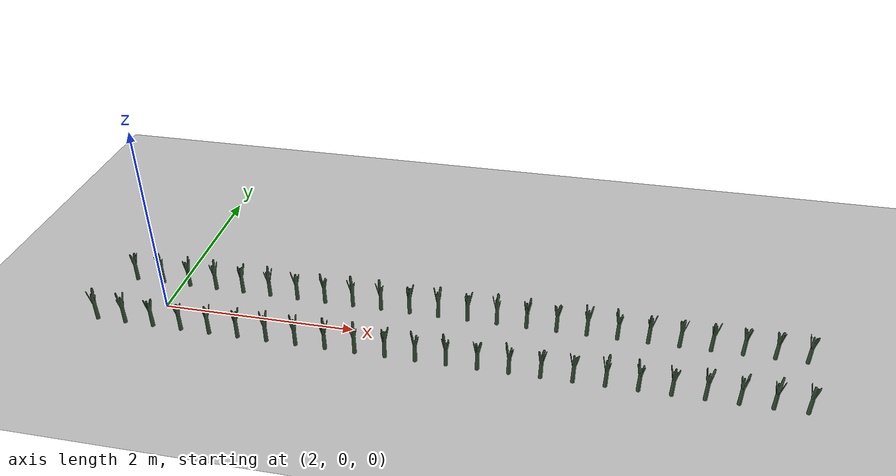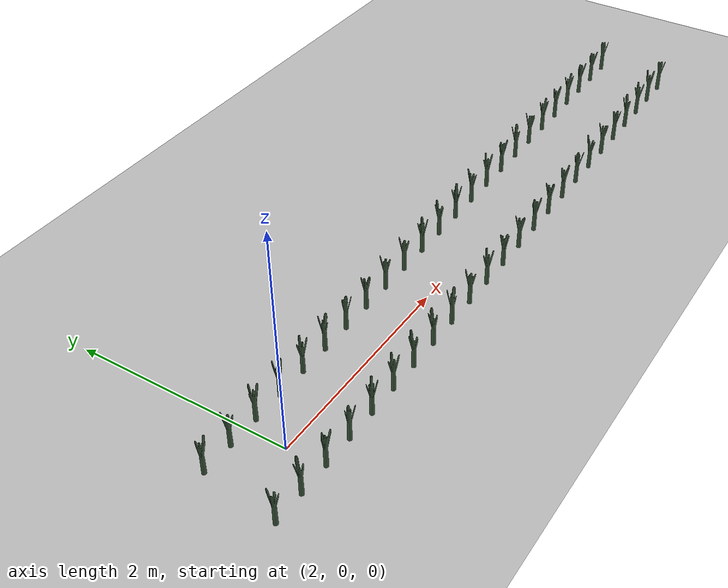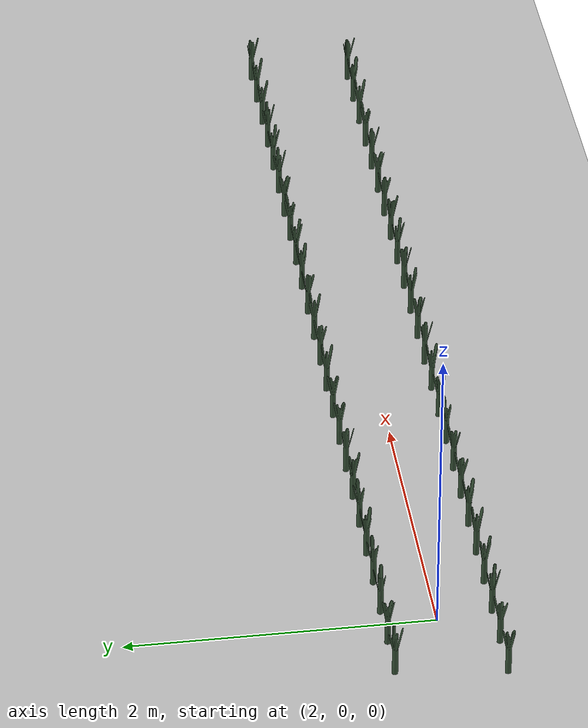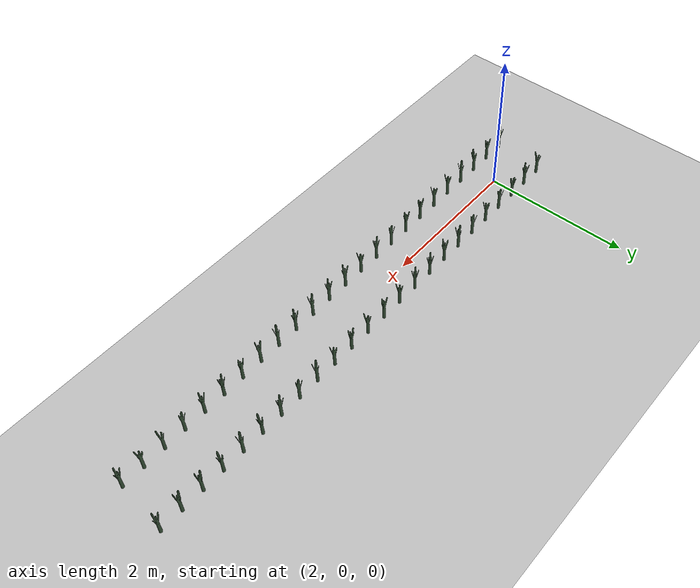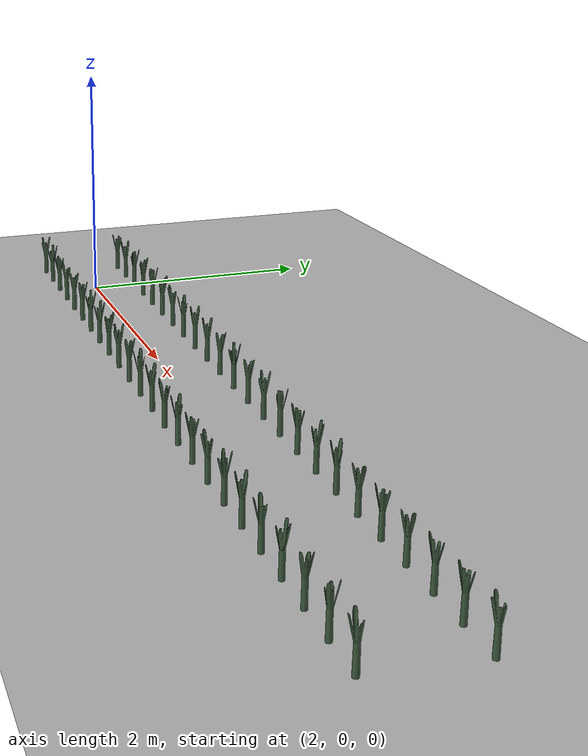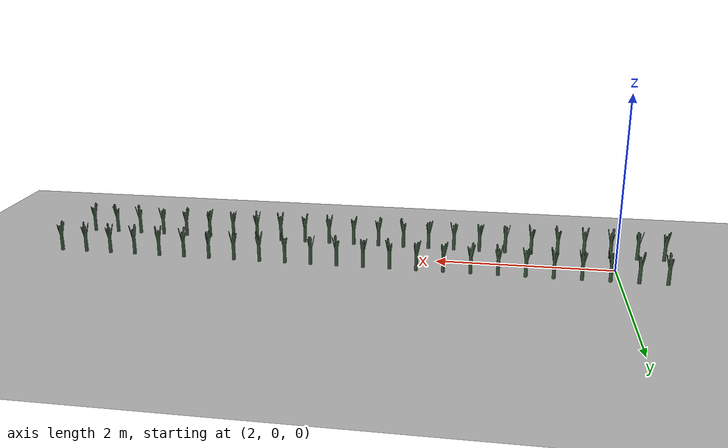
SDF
<sdf version="1.6">
 <world name="default">
  <light name="sun" type="directional">
   <pose>0 0 10 0 -0 0</pose>
   <diffuse>0.5 0.5 0.5 1</diffuse>
   <specular>0.1 0.1 0.1 1</specular>
   <attenuation>
    <range>1000</range>
    <constant>0.9</constant>
    <linear>0.01</linear>
    <quadratic>0.001</quadratic>
   </attenuation>
   <direction>0.9 0.5 -1</direction>
  </light>
  <scene><background>130 200 255 1</background><ambient>130 140 140 1</ambient></scene>
  <include><uri>model://dirt_plane</uri></include>
  <include><uri>model://Leek</uri><pose>1.500000 0.350000 0.15 0 0 111.521978</pose><static>0</static></include>
  <include><uri>model://Leek</uri><pose>1.800000 0.350000 0.15 0 0 -92.050292</pose><static>0</static></include>
  <include>
   <uri>model://Leek</uri>
   <pose>2.100000 0.350000 0.15 0 0 -132.104680</pose>
   <static>0</static>
  </include>
  <include><uri>model://Leek</uri><pose>2.400000 0.350000 0.15 0 0 -81.534411</pose><static>0</static></include>
  <include><uri>model://Leek</uri><pose>2.700000 0.350000 0.15 0 0 -0.655057</pose><static>0</static></include>
  <include><uri>model://Leek</uri><pose>3.000000 0.350000 0.15 0 0 -12.314395</pose><static>0</static></include>
  <include>
   <uri>model://Leek</uri>
   <pose>3.300000 0.350000 0.15 0 0 -141.010897</pose>
   <static>0</static>
  </include>
  <include><uri>model://Leek</uri><pose>3.600000 0.350000 0.15 0 0 27.825775</pose><static>0</static></include>
  <include><uri>model://Leek</uri><pose>3.900000 0.350000 0.15 0 0 -79.605213</pose><static>0</static></include>
  <include><uri>model://Leek</uri><pose>4.200000 0.350000 0.15 0 0 8.320222</pose><static>0</static></include>
  <include><uri>model://Leek</uri><pose>4.500000 0.350000 0.15 0 0 -63.840202</pose><static>0</static></include>
  <include><uri>model://Leek</uri><pose>4.800000 0.350000 0.15 0 0 139.426235</pose><static>0</static></include>
  <include><uri>model://Leek</uri><pose>5.100000 0.350000 0.15 0 0 -57.678516</pose><static>0</static></include>
  <include><uri>model://Leek</uri><pose>5.400000 0.350000 0.15 0 0 89.526456</pose><static>0</static></include>
  <include>
   <uri>model://Leek</uri>
   <pose>5.700000 0.350000 0.15 0 0 -151.466066</pose>
   <static>0</static>
  </include>
  <include>
   <uri>model://Leek</uri>
   <pose>6.000000 0.350000 0.15 0 0 -146.838806</pose>
   <static>0</static>
  </include>
  <include>
   <uri>model://Leek</uri>
   <pose>6.300000 0.350000 0.15 0 0 -112.548337</pose>
   <static>0</static>
  </include>
  <include><uri>model://Leek</uri><pose>6.600000 0.350000 0.15 0 0 8.531240</pose><static>0</static></include>
  <include>
   <uri>model://Leek</uri>
   <pose>6.900000 0.350000 0.15 0 0 -139.845747</pose>
   <static>0</static>
  </include>
  <include><uri>model://Leek</uri><pose>7.200000 0.350000 0.15 0 0 35.568974</pose><static>0</static></include>
  <include>
   <uri>model://Leek</uri>
   <pose>7.500000 0.350000 0.15 0 0 -152.418566</pose>
   <static>0</static>
  </include>
  <include><uri>model://Leek</uri><pose>7.800000 0.350000 0.15 0 0 179.601846</pose><static>0</static></include>
  <include><uri>model://Leek</uri><pose>8.100000 0.350000 0.15 0 0 123.109813</pose><static>0</static></include>
  <include><uri>model://Leek</uri><pose>8.400000 0.350000 0.15 0 0 72.264714</pose><static>0</static></include>
  <include>
   <uri>model://Leek</uri>
   <pose>1.414264 -0.350000 0.15 0 0 -48.354649</pose>
   <static>0</static>
  </include>
  <include><uri>model://Leek</uri><pose>1.714264 -0.350000 0.15 0 0 7.430949</pose><static>0</static></include>
  <include><uri>model://Leek</uri><pose>2.014264 -0.350000 0.15 0 0 41.949103</pose><static>0</static></include>
  <include><uri>model://Leek</uri><pose>2.314264 -0.350000 0.15 0 0 79.132375</pose><static>0</static></include>
  <include>
   <uri>model://Leek</uri>
   <pose>2.614264 -0.350000 0.15 0 0 -70.132828</pose>
   <static>0</static>
  </include>
  <include>
   <uri>model://Leek</uri>
   <pose>2.914264 -0.350000 0.15 0 0 168.917512</pose>
   <static>0</static>
  </include>
  <include>
   <uri>model://Leek</uri>
   <pose>3.214264 -0.350000 0.15 0 0 -11.398969</pose>
   <static>0</static>
  </include>
  <include>
   <uri>model://Leek</uri>
   <pose>3.514264 -0.350000 0.15 0 0 -36.702828</pose>
   <static>0</static>
  </include>
  <include><uri>model://Leek</uri><pose>3.814264 -0.350000 0.15 0 0 69.419482</pose><static>0</static></include>
  <include>
   <uri>model://Leek</uri>
   <pose>4.114264 -0.350000 0.15 0 0 -42.083357</pose>
   <static>0</static>
  </include>
  <include><uri>model://Leek</uri><pose>4.414264 -0.350000 0.15 0 0 68.263137</pose><static>0</static></include>
  <include>
   <uri>model://Leek</uri>
   <pose>4.714264 -0.350000 0.15 0 0 -60.075069</pose>
   <static>0</static>
  </include>
  <include>
   <uri>model://Leek</uri>
   <pose>5.014264 -0.350000 0.15 0 0 146.891669</pose>
   <static>0</static>
  </include>
  <include>
   <uri>model://Leek</uri>
   <pose>5.314264 -0.350000 0.15 0 0 -147.001590</pose>
   <static>0</static>
  </include>
  <include><uri>model://Leek</uri><pose>5.614264 -0.350000 0.15 0 0 46.534506</pose><static>0</static></include>
  <include>
   <uri>model://Leek</uri>
   <pose>5.914264 -0.350000 0.15 0 0 -64.970524</pose>
   <static>0</static>
  </include>
  <include>
   <uri>model://Leek</uri>
   <pose>6.214264 -0.350000 0.15 0 0 -59.456535</pose>
   <static>0</static>
  </include>
  <include>
   <uri>model://Leek</uri>
   <pose>6.514264 -0.350000 0.15 0 0 -162.045142</pose>
   <static>0</static>
  </include>
  <include>
   <uri>model://Leek</uri>
   <pose>6.814264 -0.350000 0.15 0 0 -54.311703</pose>
   <static>0</static>
  </include>
  <include>
   <uri>model://Leek</uri>
   <pose>7.114264 -0.350000 0.15 0 0 -110.134919</pose>
   <static>0</static>
  </include>
  <include>
   <uri>model://Leek</uri>
   <pose>7.414264 -0.350000 0.15 0 0 -93.611081</pose>
   <static>0</static>
  </include>
  <include>
   <uri>model://Leek</uri>
   <pose>7.714264 -0.350000 0.15 0 0 -45.010166</pose>
   <static>0</static>
  </include>
  <include>
   <uri>model://Leek</uri>
   <pose>8.014264 -0.350000 0.15 0 0 -119.996754</pose>
   <static>0</static>
  </include>
  <include>
   <uri>model://Leek</uri>
   <pose>8.314264 -0.350000 0.15 0 0 -40.951177</pose>
   <static>0</static>
  </include>
 </world>
</sdf>

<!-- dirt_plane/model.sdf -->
<sdf version="1.4">
<model name="dirt_plane">
  <static>true</static>
    <link name="link">
      <collision name="collision">
        <geometry>
          <plane>
            <normal>0 0 1</normal>
            <size>100 100</size>
          </plane>
        </geometry>
        <surface>
          <friction>
            <ode>
              <mu>100</mu>
              <mu2>50</mu2>
            </ode>
          </friction>
        </surface>
      </collision>
      <visual name="visual">
        <cast_shadows>false</cast_shadows>
        <geometry>
          <plane>
            <normal>0 0 1</normal>
            <size>100 100</size>
          </plane>
        </geometry>
        <material>
          <script>
            <uri>model://ground_plane/materials/scripts/my_ground_plane.material</uri>
            <uri>model://ground_plane/materials/textures</uri>
            <name>my_ground_plane/Dirt</name>
          </script>
        </material>
      </visual>
    </link>
  </model>
</sdf>

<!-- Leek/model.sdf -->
<sdf version='1.6'>
  <model name='Leek'>
    <link name='link'>
      <pose frame=''>0 0 0 0 -0 0</pose>
      <inertial>
        <mass>1</mass>
        <inertia>
          <ixx>0.145833</ixx>
          <ixy>0</ixy>
          <ixz>0</ixz>
          <iyy>0.145833</iyy>
          <iyz>0</iyz>
          <izz>0.125</izz>
        </inertia>
        <pose frame=''>0 0 0 0 -0 0</pose>
      </inertial>
      <self_collide>0</self_collide>
      <kinematic>0</kinematic>
      <gravity>1</gravity>
      <visual name='visual'>
        <geometry>
          <mesh>
            <uri>model://Leek/Poireau.dae</uri>
            <scale>1 1 1</scale>
          </mesh>
        </geometry>
        <material>
          <script>
            <name>Gazebo/Grey</name>
            <uri>file://media/materials/scripts/gazebo.material</uri>
          </script>
          <ambient>0.3 0.7 0.4 0</ambient>
          <diffuse>0.2 0.3 0.2 0</diffuse>
          <specular>0 0 0 1</specular>
          <emissive>0 0 0 1</emissive>
          <shader type='vertex'>
            <normal_map>__default__</normal_map>
          </shader>
        </material>
        <pose frame=''>0 0 -0.08 0 -0 0</pose>
        <cast_shadows>1</cast_shadows>
        <transparency>0</transparency>
      </visual>
      <collision name='collision'>
        <laser_retro>0</laser_retro>
        <max_contacts>10</max_contacts>
        <pose frame=''>0 0 0 0 -0 0</pose>
        <geometry>
          <cylinder>
            <radius>0.02</radius>
            <length>0.25</length>
          </cylinder>
        </geometry>
        <surface>
          <friction>
            <ode>
              <mu>1</mu>
              <mu2>1</mu2>
              <fdir1>0 0 0</fdir1>
              <slip1>0</slip1>
              <slip2>0</slip2>
            </ode>
            <torsional>
              <coefficient>1</coefficient>
              <patch_radius>0</patch_radius>
              <surface_radius>0</surface_radius>
              <use_patch_radius>1</use_patch_radius>
              <ode>
                <slip>0</slip>
              </ode>
            </torsional>
          </friction>
          <bounce>
            <restitution_coefficient>0</restitution_coefficient>
            <threshold>1e+06</threshold>
          </bounce>
          <contact>
            <collide_without_contact>0</collide_without_contact>
            <collide_without_contact_bitmask>1</collide_without_contact_bitmask>
            <collide_bitmask>1</collide_bitmask>
            <ode>
              <soft_cfm>0</soft_cfm>
              <soft_erp>0.2</soft_erp>
              <kp>1e+13</kp>
              <kd>1</kd>
              <max_vel>0.01</max_vel>
              <min_depth>0</min_depth>
            </ode>
            <bullet>
              <split_impulse>1</split_impulse>
              <split_impulse_penetration_threshold>-0.01</split_impulse_penetration_threshold>
              <soft_cfm>0</soft_cfm>
              <soft_erp>0.2</soft_erp>
              <kp>1e+13</kp>
              <kd>1</kd>
            </bullet>
          </contact>
        </surface>
      </collision>
    </link>
    <static>0</static>
    <allow_auto_disable>1</allow_auto_disable>
  </model>
</sdf>
